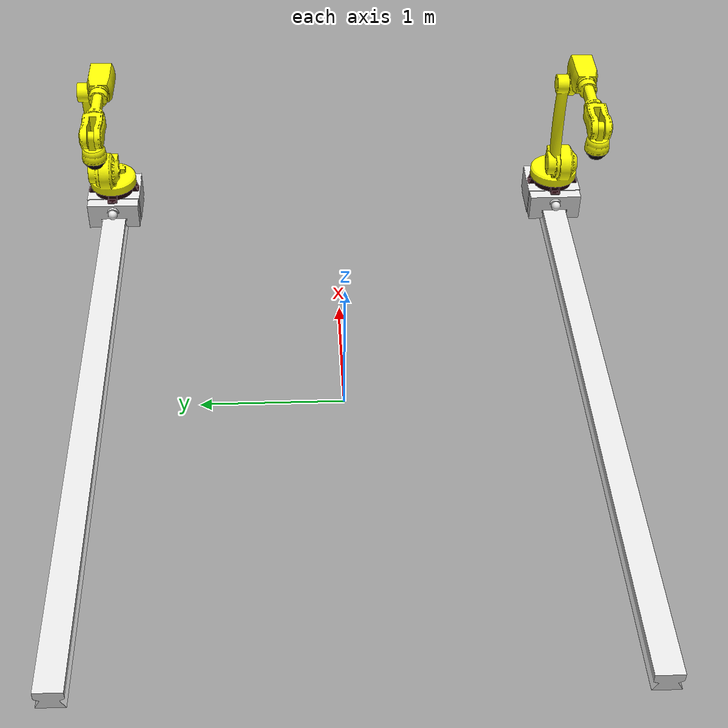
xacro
<?xml version="1.0"?>
<robot xmlns:xacro="http://wiki.ros.org/xacro" name="robotic_system">
    <xacro:include filename="$(find preentend_description)/urdf/robot_arm_urdf_macro.xacro" />

    <xacro:robot_arm prefix="robot1" />
    <xacro:robot_arm prefix="robot2" />

    <link name="world" />

    <joint name="world_to_robot1" type="fixed">
        <parent link="world" />
        <child link="robot1_linear_axis_track_link" />
        <origin xyz="0 -1.75 0" rpy="${-0.5*pi} 0 ${0.5*pi}" />
    </joint>
    <joint name="world_to_robot2" type="fixed">
        <parent link="world" />
        <child link="robot2_linear_axis_track_link" />
        <origin xyz="0 1.75 0" rpy="${-0.5*pi} 0 ${0.5*pi}" />
    </joint>
</robot>

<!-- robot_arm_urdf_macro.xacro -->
<robot xmlns:xacro="http://wiki.ros.org/xacro">

    <xacro:macro name="robot_arm" params="prefix">
        <link name="${prefix}_linear_axis_track_link">
            <inertial>
                <mass value="0.110667" />
                <origin xyz="-8.67362e-18 -0.0747302 -8.32667e-17" rpy="0 -0 0" />
                <inertia ixx="0.212684" ixy="0" ixz="0" iyy="0.212731" iyz="0" izz="0.000453068" />
            </inertial>
            <visual>
                <origin xyz="0.0075 -0.0685027 -0.2" rpy="0 -0 0" />
                <geometry>
                    <mesh filename="package://preentend_description/meshes/linear_axis_track_link.stl" scale="1 1 1" />
                </geometry>
                <material name="0.894118_0.894118_0.894118_0.000000_0.000000">
                    <color rgba="0.894118 0.894118 0.894118 1" />
                </material>
            </visual>
        </link>
        <link name="${prefix}_linear_axis_carrier_link">
            <inertial>
                <mass value="0.0292796" />
                <origin xyz="0.0900152 -0.108441 -0.221511" rpy="0 -0 0" />
                <inertia ixx="0.000574223" ixy="7.05982e-08" ixz="2.25654e-08" iyy="0.000940785"
                    iyz="-1.82245e-06" izz="0.000549286" />
            </inertial>
            <visual>
                <origin xyz="0.106514 -0.115615 -0.239552" rpy="0 -0 0" />
                <geometry>
                    <mesh filename="package://preentend_description/meshes/linear_axis_carrier_link.stl" scale="1 1 1" />
                </geometry>
                <material name="0.894118_0.894118_0.894118_0.000000_0.000000">
                    <color rgba="0.894118 0.894118 0.894118 1" />
                </material>
            </visual>
        </link>
        <link name="${prefix}_base_link">
            <inertial>
                <mass value="0.00567944" />
                <origin xyz="0.00144905 0.0379766 -0.00144905" rpy="0 -0 0" />
                <inertia ixx="3.60174e-05" ixy="-4.73146e-08" ixz="-7.99858e-07" iyy="6.60525e-05"
                    iyz="4.73146e-08" izz="3.60174e-05" />
            </inertial>
            <visual>
                <origin xyz="0 0 0" rpy="0 -0 0" />
                <geometry>
                    <mesh filename="package://preentend_description/meshes/base_link.stl" scale="1 1 1" />
                </geometry>
                <material name="0.121569_0.000000_0.027451_0.000000_0.000000">
                    <color rgba="0.121569 0 0.027451 1" />
                </material>
            </visual>
        </link>
        <link name="${prefix}_link1">
            <inertial>
                <mass value="0.0191256" />
                <origin xyz="-0.117995 0.129518 0.00778591" rpy="0 -0 0" />
                <inertia ixx="0.000396669" ixy="0.000302002" ixz="1.93511e-05" iyy="0.000538894"
                    iyz="-1.74559e-05" izz="0.000789234" />
            </inertial>
            <visual>
                <origin xyz="-0.0589974 0.0447591 0.00389295" rpy="0 -0 0" />
                <geometry>
                    <mesh filename="package://preentend_description/meshes/link1.stl" scale="1 1 1" />
                </geometry>
                <material name="1.000000_1.000000_0.000000_0.000000_0.000000">
                    <color rgba="1 1 0 1" />
                </material>
            </visual>
        </link>
        <link name="${prefix}_link2">
            <inertial>
                <mass value="0.00837477" />
                <origin xyz="-0.29913 0.0723407 0.0189105" rpy="0 -0 0" />
                <inertia ixx="2.1982e-05" ixy="-6.07057e-07" ixz="7.51189e-06" iyy="0.000611941"
                    iyz="6.61128e-07" izz="0.000599434" />
            </inertial>
            <visual>
                <origin xyz="-0.149564 0.0561702 0.00945553" rpy="0 -0 0" />
                <geometry>
                    <mesh filename="package://preentend_description/meshes/link2.stl" scale="1 1 1" />
                </geometry>
                <material name="1.000000_1.000000_0.000000_0.000000_0.000000">
                    <color rgba="1 1 0 1" />
                </material>
            </visual>
        </link>
        <link name="${prefix}_link3">
            <inertial>
                <mass value="0.011799" />
                <origin xyz="0.0527793 0.0786773 0.0924536" rpy="0 -0 0" />
                <inertia ixx="0.000288926" ixy="-4.01186e-06" ixz="-3.51329e-06" iyy="0.00027606"
                    iyz="-1.23516e-05" izz="6.25747e-05" />
            </inertial>
            <visual>
                <origin xyz="0.0543897 0.0843386 -0.0037732" rpy="0 -0 0" />
                <geometry>
                    <mesh filename="package://preentend_description/meshes/link3.stl" scale="1 1 1" />
                </geometry>
                <material name="1.000000_1.000000_0.000000_0.000000_0.000000">
                    <color rgba="1 1 0 1" />
                </material>
            </visual>
        </link>
        <link name="${prefix}_link4">
            <inertial>
                <mass value="0.00464246" />
                <origin xyz="0.00018902 -3.07756e-05 0.17946" rpy="0 -0 0" />
                <inertia ixx="4.42423e-05" ixy="6.22476e-11" ixz="-7.99269e-08" iyy="4.89754e-05"
                    iyz="1.00313e-08" izz="1.78565e-05" />
            </inertial>
            <visual>
                <origin xyz="9.47542e-05 -1.5431e-05 0.109729" rpy="0 -0 0" />
                <geometry>
                    <mesh filename="package://preentend_description/meshes/link4.stl" scale="1 1 1" />
                </geometry>
                <material name="1.000000_1.000000_0.000000_0.000000_0.000000">
                    <color rgba="1 1 0 1" />
                </material>
            </visual>
        </link>
        <link name="${prefix}_link5">
            <inertial>
                <mass value="0.00262068" />
                <origin xyz="0.0436739 -0.117525 -6.55607e-18" rpy="0 -0 0" />
                <inertia ixx="1.10659e-05" ixy="1.00427e-07" ixz="0" iyy="7.38163e-06" iyz="0"
                    izz="1.09578e-05" />
            </inertial>
            <visual>
                <origin xyz="0.043837 -0.100762 -6.06011e-18" rpy="0 -0 0" />
                <geometry>
                    <mesh filename="package://preentend_description/meshes/link5.stl" scale="1 1 1" />
                </geometry>
                <material name="1.000000_1.000000_0.000000_0.000000_0.000000">
                    <color rgba="1 1 0 1" />
                </material>
            </visual>
        </link>
        <link name="${prefix}_flange_link">
            <inertial>
                <mass value="0.000480412" />
                <origin xyz="5.90649e-17 2.12759e-16 -0.00053649" rpy="0 -0 0" />
                <inertia ixx="5.7962e-07" ixy="0" ixz="0" iyy="5.7962e-07" iyz="0" izz="9.95036e-07" />
            </inertial>
            <visual>
                <origin xyz="2.92246e-17 1.06541e-16 -0.0102682" rpy="0 -0 0" />
                <geometry>
                    <mesh filename="package://preentend_description/meshes/flange_link.stl" scale="1 1 1" />
                </geometry>
                <material name="0.027451_0.000000_0.015686_0.000000_0.000000">
                    <color rgba="0.027451 0 0.0156863 1" />
                </material>
            </visual>
        </link>

        <joint name="${prefix}_linear_axis_joint" type="prismatic">
            <limit effort="1" velocity="1" lower="0" upper="4.362" />
            <origin xyz="0.09 -0.084 -2.4" rpy="3.14159 8.88178e-16 -3.14159" />
            <axis xyz="0 0 -1" />
            <parent link="${prefix}_linear_axis_track_link" />
            <child link="${prefix}_linear_axis_carrier_link" />
        </joint>
        <joint name="${prefix}_linear_axis_to_robot" type="fixed">
            <origin xyz="0.0889924 -0.200528 -0.219" rpy="8.32667e-17 8.32667e-17 -3.14159" />
            <axis xyz="0 -1 0" />
            <parent link="${prefix}_linear_axis_carrier_link" />
            <child link="${prefix}_base_link" />
        </joint>
        <joint name="${prefix}_joint1" type="revolute">
            <limit effort="1" velocity="1" lower="${-pi}" upper="${pi}" />
            <origin xyz="4.4474e-16 0.102 1.19904e-14" rpy="0 -1.5708 -3.67975e-16" />
            <axis xyz="0 -1 0" />
            <parent link="${prefix}_base_link" />
            <child link="${prefix}_link1" />
        </joint>
        <joint name="${prefix}_joint2" type="revolute">
            <limit effort="1" velocity="1" lower="${-0.5*pi}" upper="${0.5*pi}" />
            <origin xyz="-0.3 0.28 2.62377e-17" rpy="-1.5708 -2.22045e-16 -1.5708" />
            <axis xyz="0 -1 0" />
            <parent link="${prefix}_link1" />
            <child link="${prefix}_link2" />
        </joint>
        <joint name="${prefix}_joint3" type="revolute">
            <limit effort="1" velocity="1" lower="${-0.25*pi}" upper="${1.25*pi}" />
            <origin xyz="-0.7 7.37257e-18 0" rpy="3.14159 1.84741e-15 -1.5708" />
            <axis xyz="-1 0 0" />
            <parent link="${prefix}_link2" />
            <child link="${prefix}_link3" />
        </joint>
        <joint name="${prefix}_joint4" type="revolute">
            <limit effort="1" velocity="1" lower="${-pi}" upper="${pi}" />
            <origin xyz="0.056 0.09 0.452" rpy="-4.95715e-15 7.22251e-16 3.14159" />
            <axis xyz="0 0 -1" />
            <parent link="${prefix}_link3" />
            <child link="${prefix}_link4" />
        </joint>
        <joint name="${prefix}_joint5" type="revolute">
            <limit effort="1" velocity="1" lower="${-pi}" upper="0" />
            <origin xyz="-0.045 -6.13565e-05 0.270269" rpy="3.14159 -3.44022e-16 -1.1221e-16" />
            <axis xyz="-1 -1.22465e-16 0" />
            <parent link="${prefix}_link4" />
            <child link="${prefix}_link5" />
        </joint>
        <joint name="${prefix}_joint6" type="revolute">
            <limit effort="1" velocity="1" lower="${-pi}" upper="${pi}" />
            <origin xyz="0.044 -0.2074 0" rpy="0 1.5708 -1.5708" />
            <axis xyz="0 0 -1" />
            <parent link="${prefix}_link5" />
            <child link="${prefix}_flange_link" />
        </joint>
    </xacro:macro>
</robot>
